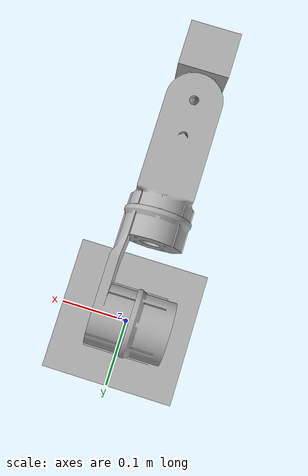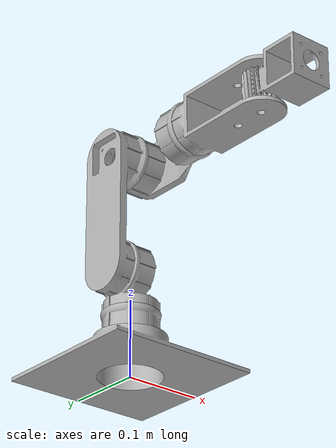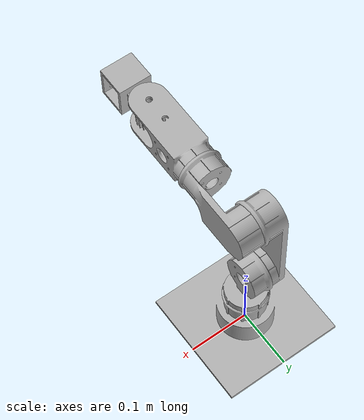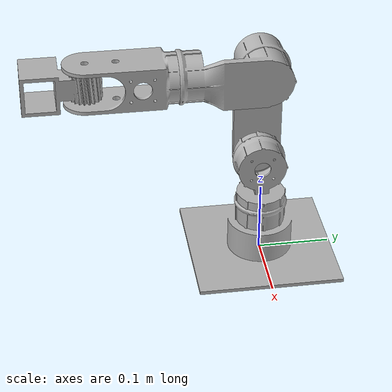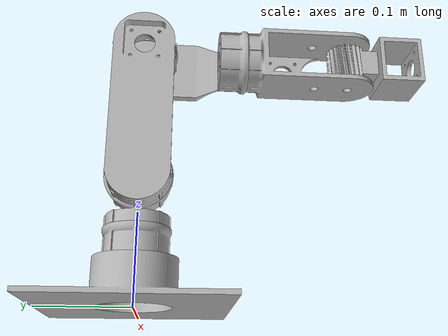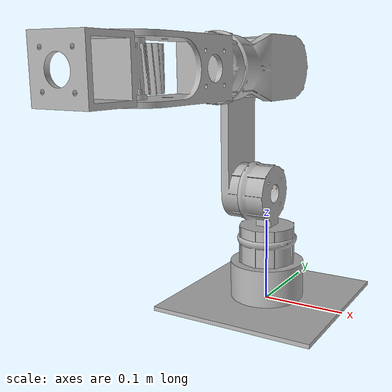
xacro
<?xml version="1.0" ?>
<robot name="complete_assembly" xmlns:xacro="http://www.ros.org/wiki/xacro">

<xacro:include filename="$(find complete_assembly_description)/urdf/materials.xacro" />
<xacro:include filename="$(find complete_assembly_description)/urdf/complete_assembly.trans" />
<xacro:include filename="$(find complete_assembly_description)/urdf/complete_assembly.gazebo" />
<link name="base_link">
  <inertial>
    <origin xyz="0.0 0.0 0.0" rpy="0 0 0"/>
    <mass value="0.0"/>
    <inertia ixx="0.0" iyy="0.0" izz="0.0" ixy="0.0" iyz="0.0" ixz="0.0"/>
  </inertial>
  <visual>
    <origin xyz="0 0 0" rpy="0 0 0"/>
    <geometry>
      <mesh filename="file://$(find complete_assembly_description)/meshes/base_link.stl" scale="0.001 0.001 0.001"/>
    </geometry>
    <material name="silver"/>
  </visual>
  <collision>
    <origin xyz="0 0 0" rpy="0 0 0"/>
    <geometry>
      <mesh filename="file://$(find complete_assembly_description)/meshes/base_link.stl" scale="0.001 0.001 0.001"/>
    </geometry>
  </collision>
</link>

<link name="Nema17_Mount_Update3_1">
  <inertial>
    <origin xyz="0.0 0.0 -0.05" rpy="0 0 0"/>
    <mass value="0.0"/>
    <inertia ixx="0.0" iyy="0.0" izz="0.0" ixy="0.0" iyz="0.0" ixz="0.0"/>
  </inertial>
  <visual>
    <origin xyz="-0.0 -0.0 -0.05" rpy="0 0 0"/>
    <geometry>
      <mesh filename="file://$(find complete_assembly_description)/meshes/Nema17_Mount_Update3_1.stl" scale="0.001 0.001 0.001"/>
    </geometry>
    <material name="silver"/>
  </visual>
  <collision>
    <origin xyz="-0.0 -0.0 -0.05" rpy="0 0 0"/>
    <geometry>
      <mesh filename="file://$(find complete_assembly_description)/meshes/Nema17_Mount_Update3_1.stl" scale="0.001 0.001 0.001"/>
    </geometry>
  </collision>
</link>

<link name="Body1_1">
  <inertial>
    <origin xyz="-0.0007196722915211019 0.00011575873578459436 0.032409131760710086" rpy="0 0 0"/>
    <mass value="0.36704191460559454"/>
    <inertia ixx="0.000443" iyy="0.000367" izz="0.000235" ixy="0.0" iyz="-0.0" ixz="5e-06"/>
  </inertial>
  <visual>
    <origin xyz="0.0 -0.0 -0.082937" rpy="0 0 0"/>
    <geometry>
      <mesh filename="file://$(find complete_assembly_description)/meshes/Body1_1.stl" scale="0.001 0.001 0.001"/>
    </geometry>
    <material name="silver"/>
  </visual>
  <collision>
    <origin xyz="0.0 -0.0 -0.082937" rpy="0 0 0"/>
    <geometry>
      <mesh filename="file://$(find complete_assembly_description)/meshes/Body1_1.stl" scale="0.001 0.001 0.001"/>
    </geometry>
  </collision>
</link>

<link name="Body1__1__1">
  <inertial>
    <origin xyz="-0.017366493712780963 7.655454982927683e-06 0.06976004743712558" rpy="0 0 0"/>
    <mass value="1.2504057024945578"/>
    <inertia ixx="0.00534" iyy="0.004929" izz="0.000585" ixy="-0.0" iyz="-0.0" ixz="-0.00016"/>
  </inertial>
  <visual>
    <origin xyz="0.01865 -0.000108 -0.135" rpy="0 0 0"/>
    <geometry>
      <mesh filename="file://$(find complete_assembly_description)/meshes/Body1__1__1.stl" scale="0.001 0.001 0.001"/>
    </geometry>
    <material name="silver"/>
  </visual>
  <collision>
    <origin xyz="0.01865 -0.000108 -0.135" rpy="0 0 0"/>
    <geometry>
      <mesh filename="file://$(find complete_assembly_description)/meshes/Body1__1__1.stl" scale="0.001 0.001 0.001"/>
    </geometry>
  </collision>
</link>

<link name="End_Cap_Update_1">
  <inertial>
    <origin xyz="0.024937986846302655 8.981733421949481e-05 0.02646485967899803" rpy="0 0 0"/>
    <mass value="1.344512093298758"/>
    <inertia ixx="0.002652" iyy="0.002464" izz="0.000769" ixy="0.0" iyz="-2e-06" ixz="0.000208"/>
  </inertial>
  <visual>
    <origin xyz="0.00635 -0.000108 -0.285" rpy="0 0 0"/>
    <geometry>
      <mesh filename="file://$(find complete_assembly_description)/meshes/End_Cap_Update_1.stl" scale="0.001 0.001 0.001"/>
    </geometry>
    <material name="silver"/>
  </visual>
  <collision>
    <origin xyz="0.00635 -0.000108 -0.285" rpy="0 0 0"/>
    <geometry>
      <mesh filename="file://$(find complete_assembly_description)/meshes/End_Cap_Update_1.stl" scale="0.001 0.001 0.001"/>
    </geometry>
  </collision>
</link>

<link name="Body1__2__1">
  <inertial>
    <origin xyz="9.076672763811925e-06 -0.0020343608650406782 0.056528762361032214" rpy="0 0 0"/>
    <mass value="1.0581850020901606"/>
    <inertia ixx="0.002234" iyy="0.002458" izz="0.000947" ixy="-0.0" iyz="-1e-05" ixz="0.0"/>
  </inertial>
  <visual>
    <origin xyz="-0.0 -0.000328 -0.39865" rpy="0 0 0"/>
    <geometry>
      <mesh filename="file://$(find complete_assembly_description)/meshes/Body1__2__1.stl" scale="0.001 0.001 0.001"/>
    </geometry>
    <material name="silver"/>
  </visual>
  <collision>
    <origin xyz="-0.0 -0.000328 -0.39865" rpy="0 0 0"/>
    <geometry>
      <mesh filename="file://$(find complete_assembly_description)/meshes/Body1__2__1.stl" scale="0.001 0.001 0.001"/>
    </geometry>
  </collision>
</link>

<link name="Body50__1__1">
  <inertial>
    <origin xyz="-0.0005652724938543265 -0.030726130572138893 -0.3753508546223778" rpy="0 0 0"/>
    <mass value="0.881602969900879"/>
    <inertia ixx="0.000982" iyy="0.001059" izz="0.000379" ixy="0.0" iyz="-1e-06" ixz="0.0"/>
  </inertial>
  <visual>
    <origin xyz="-0.000567 -0.031352 -0.92694" rpy="0 0 0"/>
    <geometry>
      <mesh filename="file://$(find complete_assembly_description)/meshes/Body50__1__1.stl" scale="0.001 0.001 0.001"/>
    </geometry>
    <material name="silver"/>
  </visual>
  <collision>
    <origin xyz="-0.000567 -0.031352 -0.92694" rpy="0 0 0"/>
    <geometry>
      <mesh filename="file://$(find complete_assembly_description)/meshes/Body50__1__1.stl" scale="0.001 0.001 0.001"/>
    </geometry>
  </collision>
</link>

<joint name="Rigid 1" type="fixed">
  <origin xyz="0.0 0.0 0.05" rpy="0 0 0"/>
  <parent link="base_link"/>
  <child link="Nema17_Mount_Update3_1"/>
</joint>

<joint name="Revolute 2" type="continuous">
  <origin xyz="-0.0 0.0 0.032937" rpy="0 0 0"/>
  <parent link="Nema17_Mount_Update3_1"/>
  <child link="Body1_1"/>
  <axis xyz="-0.0 0.0 -1.0"/>
</joint>

<joint name="Revolute 3" type="revolute">
  <origin xyz="-0.01865 0.000108 0.052063" rpy="0 0 0"/>
  <parent link="Body1_1"/>
  <child link="Body1__1__1"/>
  <axis xyz="-1.0 -0.0 0.0"/>
  <limit upper="1.570796" lower="-1.570796" effort="100" velocity="100"/>
</joint>

<joint name="Revolute 4" type="revolute">
  <origin xyz="0.0123 0.0 0.15" rpy="0 0 0"/>
  <parent link="Body1__1__1"/>
  <child link="End_Cap_Update_1"/>
  <axis xyz="1.0 0.0 -0.0"/>
  <limit upper="0.959931" lower="-4.101524" effort="100" velocity="100"/>
</joint>

<joint name="Revolute 5" type="continuous">
  <origin xyz="0.00635 0.00022 0.11365" rpy="0 0 0"/>
  <parent link="End_Cap_Update_1"/>
  <child link="Body1__2__1"/>
  <axis xyz="0.0 0.001938 0.999998"/>
</joint>

<joint name="Revolute 6" type="revolute">
  <origin xyz="0.000567 0.031024 0.52829" rpy="0 0 0"/>
  <parent link="Body1__2__1"/>
  <child link="Body50__1__1"/>
  <axis xyz="1.0 0.0 0.0"/>
  <limit upper="1.658063" lower="-1.658063" effort="100" velocity="100"/>
</joint>

</robot>

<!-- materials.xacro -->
<robot name="complete_assembly" xmlns:xacro="http://www.ros.org/wiki/xacro" >

<material name="silver">
  <color rgba="0.700 0.700 0.700 1.000"/>
</material>

</robot>

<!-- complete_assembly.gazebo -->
<robot name="complete_assembly" xmlns:xacro="http://www.ros.org/wiki/xacro" >

<xacro:property name="body_color" value="Gazebo/Silver" />

<gazebo>
  <plugin name="control" filename="libgazebo_ros_control.so"/>
</gazebo>
<gazebo reference="base_link">
  <material>${body_color}</material>
  <mu1>0.2</mu1>
  <mu2>0.2</mu2>
  <self_collide>true</self_collide>
  <gravity>true</gravity>
</gazebo>

<gazebo reference="Nema17_Mount_Update3_1">
  <material>${body_color}</material>
  <mu1>0.2</mu1>
  <mu2>0.2</mu2>
  <self_collide>true</self_collide>
</gazebo>

<gazebo reference="Body1_1">
  <material>${body_color}</material>
  <mu1>0.2</mu1>
  <mu2>0.2</mu2>
  <self_collide>true</self_collide>
</gazebo>

<gazebo reference="Body1__1__1">
  <material>${body_color}</material>
  <mu1>0.2</mu1>
  <mu2>0.2</mu2>
  <self_collide>true</self_collide>
</gazebo>

<gazebo reference="End_Cap_Update_1">
  <material>${body_color}</material>
  <mu1>0.2</mu1>
  <mu2>0.2</mu2>
  <self_collide>true</self_collide>
</gazebo>

<gazebo reference="Body1__2__1">
  <material>${body_color}</material>
  <mu1>0.2</mu1>
  <mu2>0.2</mu2>
  <self_collide>true</self_collide>
</gazebo>

<gazebo reference="Body50__1__1">
  <material>${body_color}</material>
  <mu1>0.2</mu1>
  <mu2>0.2</mu2>
  <self_collide>true</self_collide>
</gazebo>

</robot>
